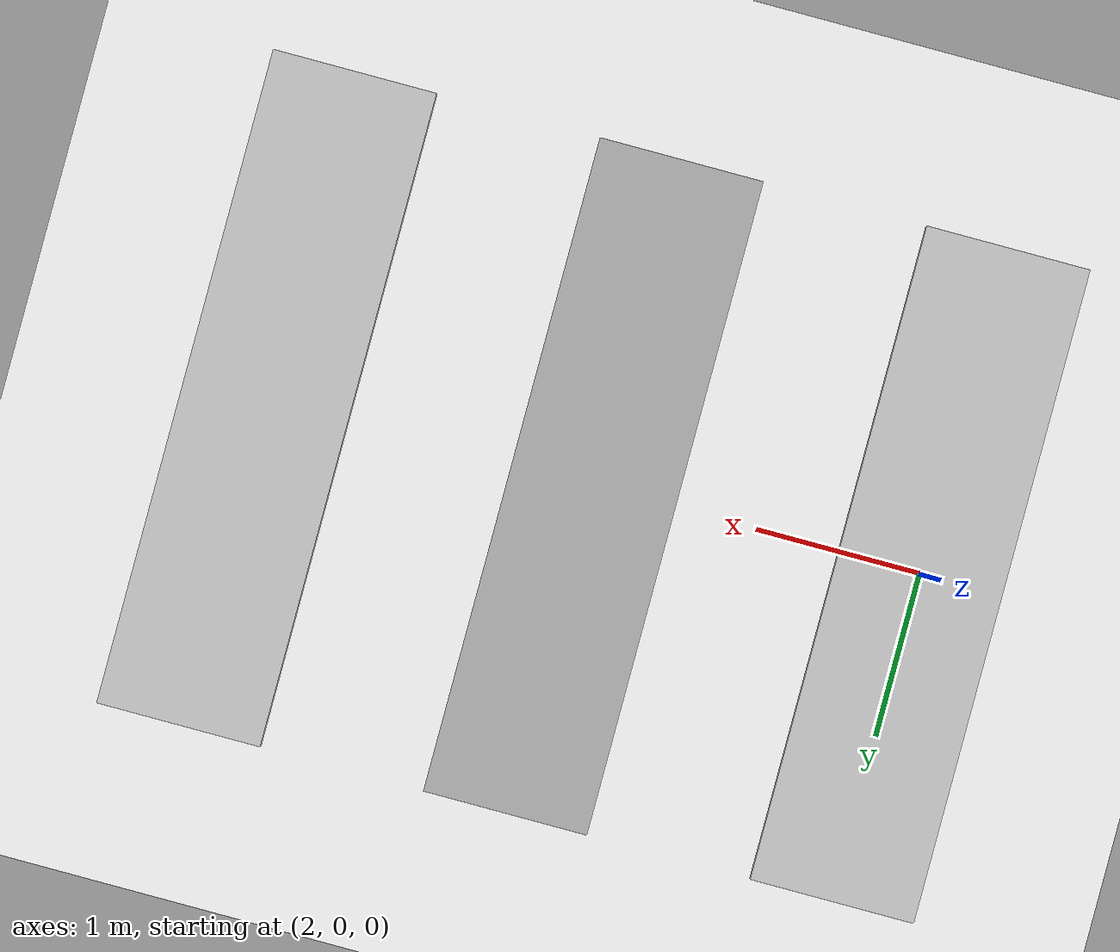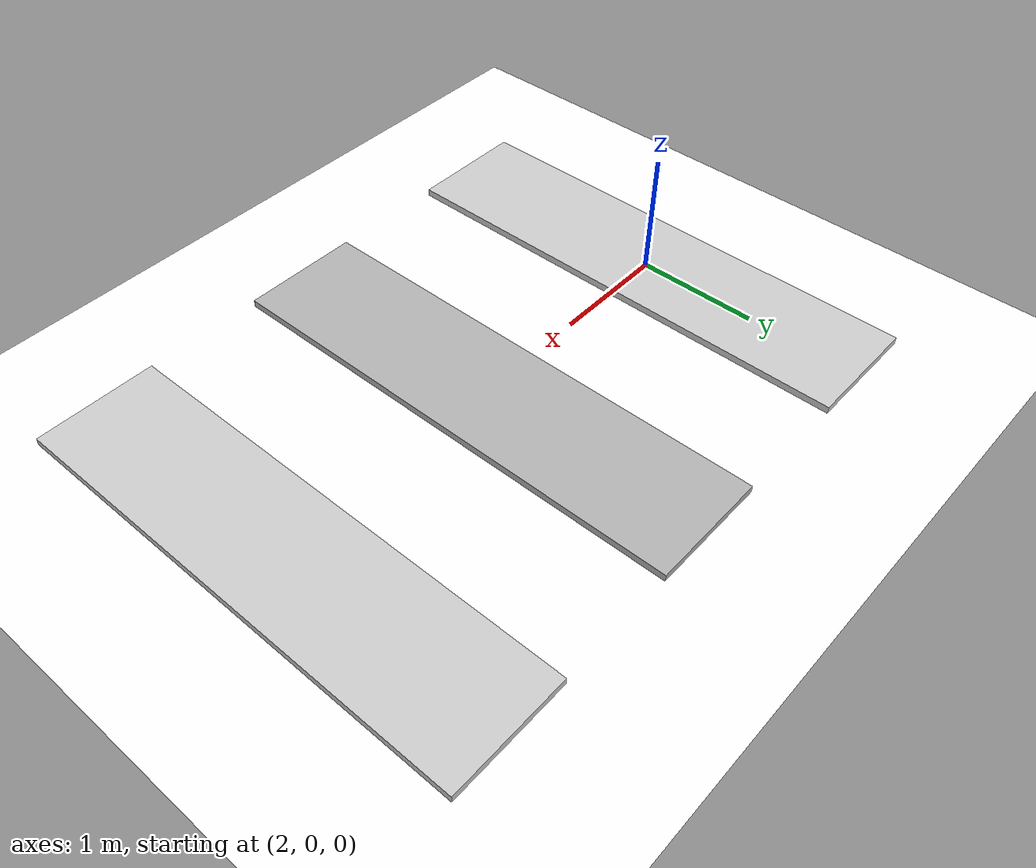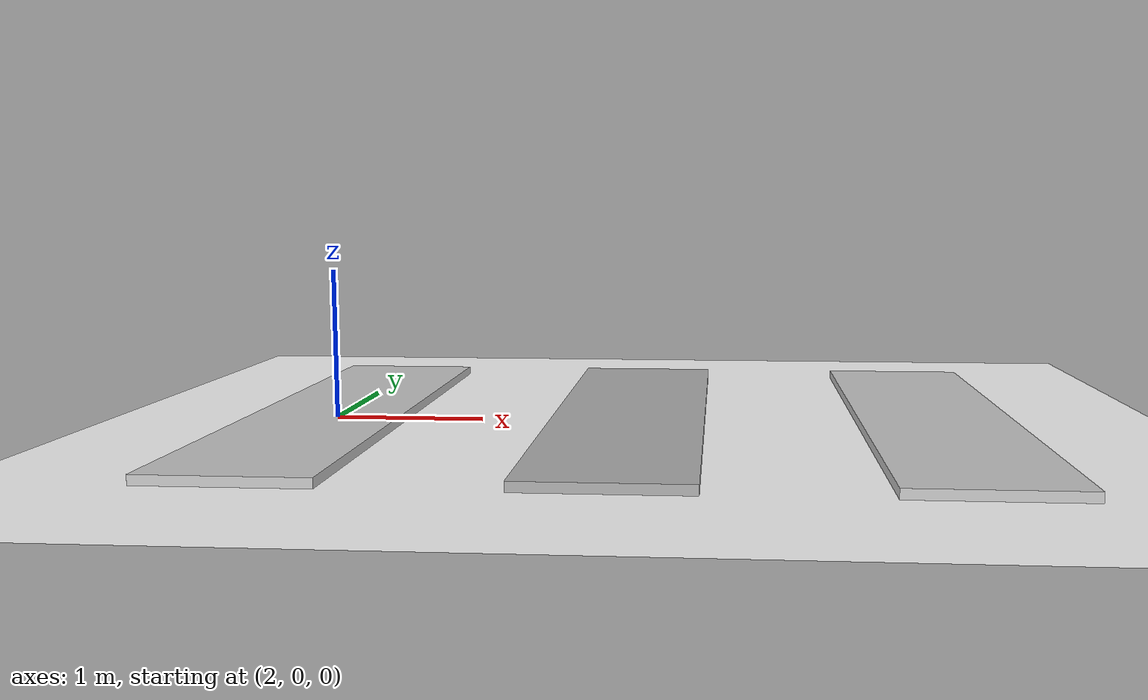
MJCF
<mujoco>

  <asset>
    <texture name="texplane" type="2d" builtin="checker" rgb1="1 1 1" rgb2="1 1 1" width="512" height="512" mark="cross" markrgb="0 0 0"/>
    <material name="matplane" reflectance="0.0" texture="texplane" texrepeat="1 1" texuniform="true"/>
  </asset>

  <worldbody>
    <geom group="1" name="floor" pos="0 0 0" size="0 0 0.25" type="plane" material="matplane" condim="3"/>
    <geom group="1" type="box" pos=" 2.0 0 0.03" size="0.5 2.00 0.03" rgba="0.8 0.8 0.8 1"/>
    <geom group="1" type="box" pos=" 4.0 0 0.03" size="0.5 2.00 0.03" rgba="0.7 0.7 0.7 1"/>
    <geom group="1" type="box" pos=" 6.0 0 0.03" size="0.5 2.00 0.03" rgba="0.8 0.8 0.8 1"/>
  </worldbody>

</mujoco>
